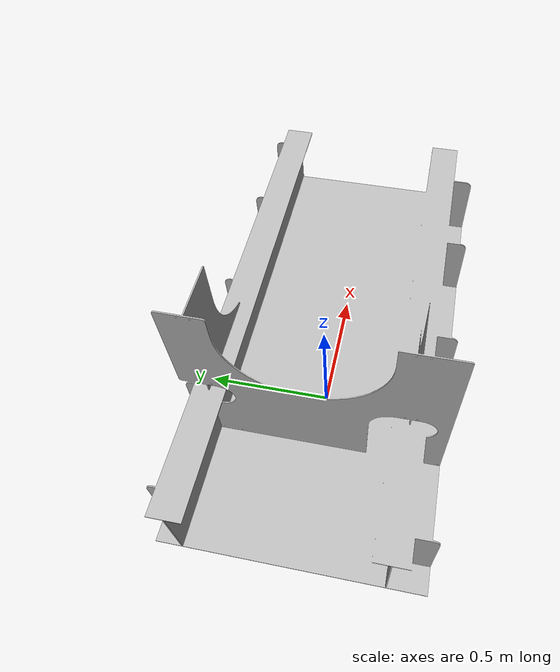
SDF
<?xml version='1.0'?>
<sdf version='1.0'>
  <model name="double_hull">
	<static>true</static>
	<link name='double_hull'>
            <pose>0 0 0.0275 1.571 0 0</pose>

            <collision name='collision'>
              <geometry>
                <mesh><uri>model://double_hull/mesh/Double Bottom Mock Block Cutout.stl</uri></mesh>
              </geometry>
		          <surface>
                <friction>
                  <ode>
                    <mu>2</mu>
                    <mu2>2</mu2>
                  </ode>
                </friction>
              </surface>
            </collision>
            <inertial>
              <mass>10000</mass>
              <inertia>
                <ixx>1.0</ixx>
                <ixy>0.0</ixy>
                <ixz>0.0</ixz>
                <iyy>1.0</iyy>
                <iyz>0.0</iyz>
                <izz>1.0</izz>
              </inertia>
            </inertial>

            <visual name='visual'>
              <geometry>
                <mesh><uri>model://double_hull/mesh/Double Bottom Mock Block Cutout.stl</uri></mesh>
              </geometry>
            </visual>
          </link>
  </model>
</sdf>
